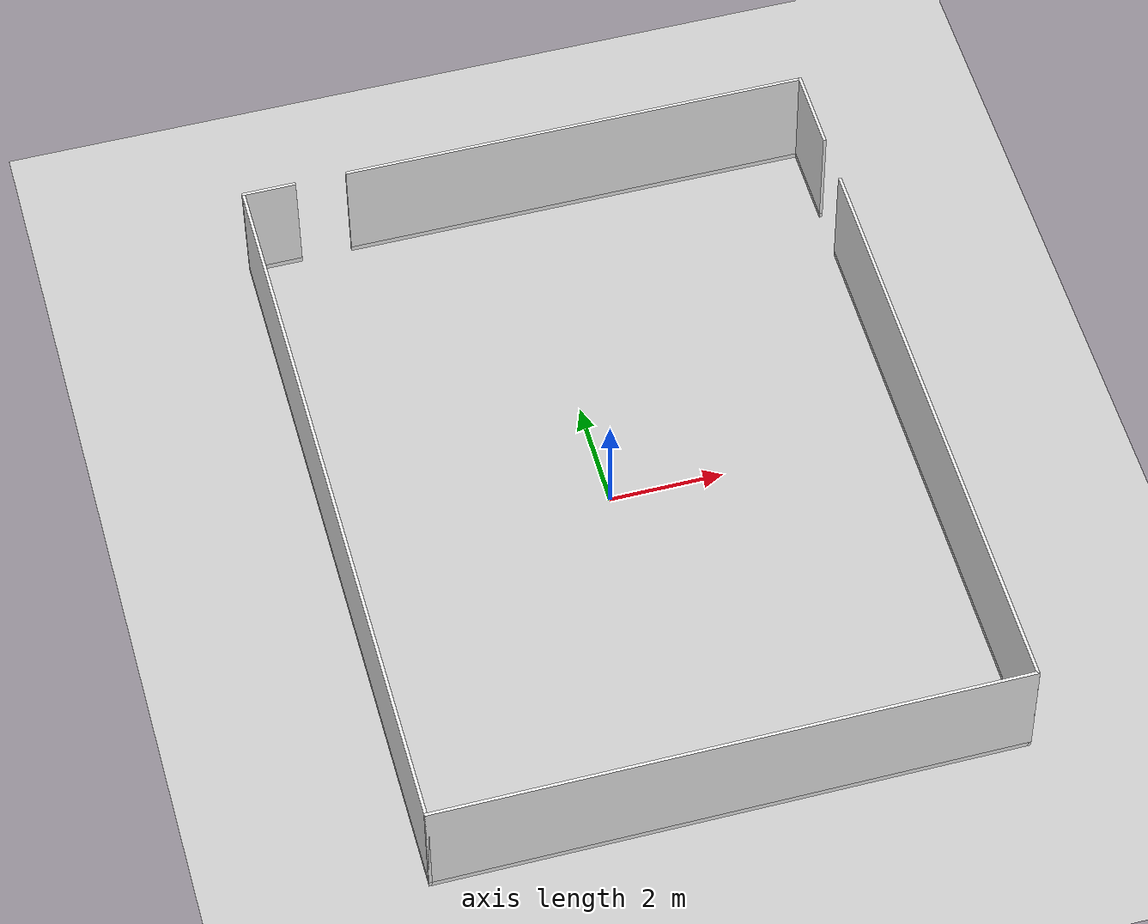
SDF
<sdf version="1.6">
 <world name="default">
  <model name="ground_plane">
   <static>1</static>
   <link name="link">
    <collision name="collision">
     <geometry><plane><normal>0 0 1</normal><size>100 100</size></plane></geometry>
     <surface>
      <contact><collide_bitmask>65535</collide_bitmask></contact>
      <friction><ode><mu>100</mu><mu2>50</mu2></ode></friction>
     </surface>
    </collision>
    <visual name="visual">
     <cast_shadows>0</cast_shadows>
     <geometry><plane><normal>0 0 1</normal><size>100 100</size></plane></geometry>
     <material>
      <script><uri>file://media/materials/scripts/gazebo.material</uri><name>Gazebo/Grey</name></script>
     </material>
    </visual>
   </link>
  </model>
  <model name="full_outside_wall">
   <link name="link">
    <inertial>
     <mass>50</mass>
     <inertia><ixx>1</ixx><ixy>0</ixy><ixz>0</ixz><iyy>1</iyy><iyz>0</iyz><izz>1</izz></inertia>
    </inertial>
    <visual name="x00_13y00_bottom_frame">
     <pose>5.0375 -0.0275 0.05 0 -0 0</pose>
     <geometry><box><size>10.185 0.055 0.1</size></box></geometry>
     <material>
      <script><uri>model://base_materials/color/scripts</uri><name>hsr_color/white</name></script>
     </material>
    </visual>
    <collision name="x00_13y00_collision_bottom_frame">
     <pose>5.0375 -0.0275 0.05 0 -0 0</pose>
     <geometry><box><size>10.185 0.055 0.1</size></box></geometry>
    </collision>
    <visual name="wall_x00_13y00">
     <pose>5.0375 -0.0275 1.095 0 -0 0</pose>
     <geometry><box><size>10.185 0.055 1.99</size></box></geometry>
     <material>
      <script>
       <uri>model://base_materials/wall/scripts</uri>
       <uri>model://base_materials/wall/textures</uri>
       <name>wall/white_noise</name>
      </script>
     </material>
    </visual>
    <collision name="wall_x00_13y00">
     <pose>5.0375 -0.002 1.095 0 -0 0</pose>
     <geometry><box><size>10.08 0.055 1.99</size></box></geometry>
    </collision>
    <visual name="x00y00_15_bottom_frame">
     <pose>-0.0275 6.59 0.05 0 -0 0</pose>
     <geometry><box><size>0.055 13.29 0.1</size></box></geometry>
     <material>
      <script><uri>model://base_materials/color/scripts</uri><name>hsr_color/white</name></script>
     </material>
    </visual>
    <collision name="x00y00_15_collision_bottom_frame">
     <pose>-0.0275 6.59 0.05 0 -0 0</pose>
     <geometry><box><size>0.055 13.29 0.1</size></box></geometry>
    </collision>
    <visual name="wall_x00y00_15">
     <pose>-0.0275 6.59 1.095 0 -0 0</pose>
     <geometry><box><size>0.055 13.29 1.99</size></box></geometry>
     <material>
      <script>
       <uri>model://base_materials/wall/scripts</uri>
       <uri>model://base_materials/wall/textures</uri>
       <name>wall/white_noise</name>
      </script>
     </material>
    </visual>
    <collision name="wall_x00y00_x00y15">
     <pose>-0.002 6.59 1.095 0 -0 0</pose>
     <geometry><box><size>0.002 13.29 1.99</size></box></geometry>
    </collision>
    <visual name="x13y00_12_bottom_frame">
     <pose>10.1025 5.3725 0.05 0 -0 0</pose>
     <geometry><box><size>0.055 10.855 0.1</size></box></geometry>
     <material>
      <script><uri>model://base_materials/color/scripts</uri><name>hsr_color/white</name></script>
     </material>
    </visual>
    <collision name="x13y00_12_collision_bottom_frame">
     <pose>10.1025 5.3725 0.05 0 -0 0</pose>
     <geometry><box><size>0.055 10.855 0.1</size></box></geometry>
    </collision>
    <visual name="wall_x13y00_12">
     <pose>10.1025 5.3725 1.095 0 -0 0</pose>
     <geometry><box><size>0.055 10.855 1.99</size></box></geometry>
     <material>
      <script>
       <uri>model://base_materials/wall/scripts</uri>
       <uri>model://base_materials/wall/textures</uri>
       <name>wall/white_noise</name>
      </script>
     </material>
    </visual>
    <collision name="wall_x13y00_12">
     <pose>10.1025 5.3725 1.095 0 -0 0</pose>
     <geometry><box><size>0.055 10.855 1.99</size></box></geometry>
    </collision>
    <visual name="x13y14_16_bottom_frame">
     <pose>10.1025 12.4675 0.05 0 -0 0</pose>
     <geometry><box><size>0.055 1.535 0.1</size></box></geometry>
     <material>
      <script><uri>model://base_materials/color/scripts</uri><name>hsr_color/white</name></script>
     </material>
    </visual>
    <collision name="x13y14_16_collision_bottom_frame">
     <pose>10.1025 12.4675 0.05 0 -0 0</pose>
     <geometry><box><size>0.055 1.535 0.1</size></box></geometry>
    </collision>
    <visual name="wall_x13y14_x13y16">
     <pose>10.1025 12.4675 1.095 0 -0 0</pose>
     <geometry><box><size>0.055 1.535 1.99</size></box></geometry>
     <material>
      <script>
       <uri>model://base_materials/wall/scripts</uri>
       <uri>model://base_materials/wall/textures</uri>
       <name>wall/white_noise</name>
      </script>
     </material>
    </visual>
    <collision name="wall_x13y14_x13y16">
     <pose>10.1025 12.4675 1.095 0 -0 0</pose>
     <geometry><box><size>0.055 1.535 1.99</size></box></geometry>
    </collision>
    <visual name="x00_01y16_bottom_frame">
     <pose>0.4225 13.2075 0.05 0 -0 0</pose>
     <geometry><box><size>0.955 0.055 0.1</size></box></geometry>
     <material>
      <script><uri>model://base_materials/color/scripts</uri><name>hsr_color/white</name></script>
     </material>
    </visual>
    <collision name="x00_01y16_collision_bottom_frame">
     <pose>0.4225 13.2075 0.05 0 -0 0</pose>
     <geometry><box><size>0.955 0.055 0.1</size></box></geometry>
    </collision>
    <visual name="wall_x00_01y16">
     <pose>0.4225 13.2075 1.095 0 -0 0</pose>
     <geometry><box><size>0.955 0.055 1.99</size></box></geometry>
     <material>
      <script>
       <uri>model://base_materials/wall/scripts</uri>
       <uri>model://base_materials/wall/textures</uri>
       <name>wall/white_noise</name>
      </script>
     </material>
    </visual>
    <collision name="wall_x00_x01y16">
     <pose>0.4225 13.2075 1.095 0 -0 0</pose>
     <geometry><box><size>0.955 0.055 1.99</size></box></geometry>
    </collision>
    <visual name="x03_13y16_bottom_frame">
     <pose>5.965 13.2075 0.05 0 -0 0</pose>
     <geometry><box><size>8.33 0.05 0.1</size></box></geometry>
     <material>
      <script><uri>model://base_materials/color/scripts</uri><name>hsr_color/white</name></script>
     </material>
    </visual>
    <collision name="x03_13y16_collision_bottom_frame">
     <pose>5.965 13.2075 0.05 0 -0 0</pose>
     <geometry><box><size>8.33 0.05 0.1</size></box></geometry>
    </collision>
    <visual name="wall_x03_13y16">
     <pose>5.965 13.2075 1.095 0 -0 0</pose>
     <geometry><box><size>8.33 0.055 1.99</size></box></geometry>
     <material>
      <script>
       <uri>model://base_materials/wall/scripts</uri>
       <uri>model://base_materials/wall/textures</uri>
       <name>wall/white_noise</name>
      </script>
     </material>
    </visual>
    <collision name="wall_x03_13y16">
     <pose>5.965 13.2075 1.095 0 -0 0</pose>
     <geometry><box><size>8.33 0.055 1.99</size></box></geometry>
    </collision>
    <velocity_decay><linear>0</linear><angular>0</angular></velocity_decay>
   </link>
   <static>1</static>
   <pose>-4.7925 -6.61209 0 0 -0 0</pose>
  </model>
 </world>
</sdf>
